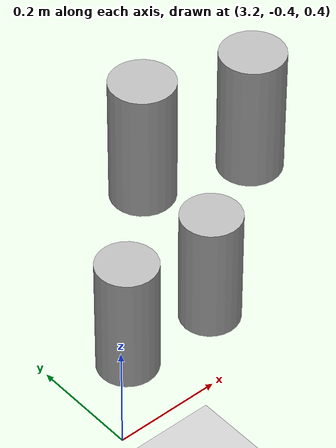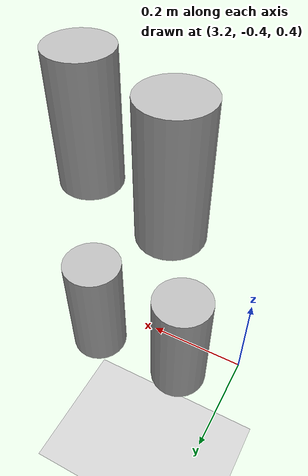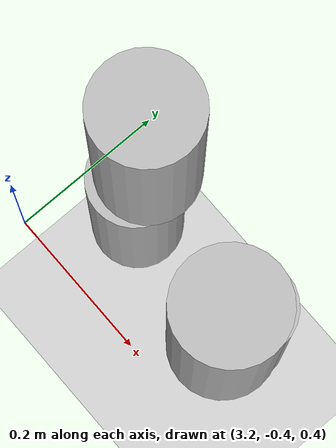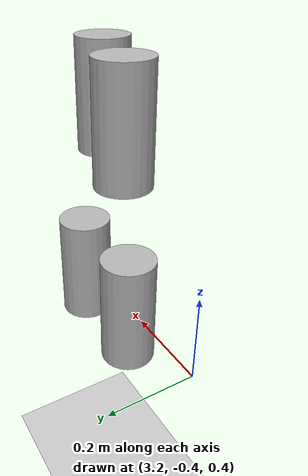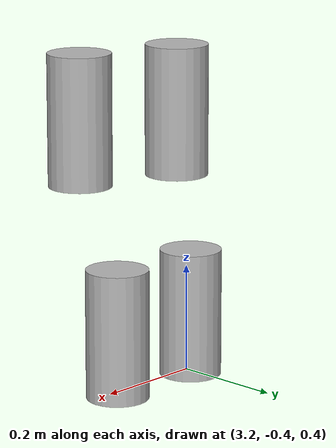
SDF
<sdf version="1.7">
 <world name="default">
  <model name="ground_plane">
   <static>1</static>
   <link name="link">
    <collision name="collision">
     <geometry><plane><normal>0 0 1</normal><size>100 100</size></plane></geometry>
     <surface>
      <contact><collide_bitmask>65535</collide_bitmask></contact>
      <friction><ode><mu>100</mu><mu2>50</mu2></ode></friction>
     </surface>
    </collision>
    <visual name="visual">
     <cast_shadows>0</cast_shadows>
     <geometry><plane><normal>0 0 1</normal><size>100 100</size></plane></geometry>
     <material>
      <script><uri>file://media/materials/scripts/gazebo.material</uri><name>Gazebo/Grey</name></script>
     </material>
    </visual>
   </link>
  </model>
  <model name="beer">
   <link name="link">
    <pose>0 0 0.115 0 -0 0</pose>
    <inertial>
     <mass>0.39</mass>
     <inertia><ixx>0.00058</ixx><ixy>0</ixy><ixz>0</ixz><iyy>0.00058</iyy><iyz>0</iyz><izz>0.00019</izz></inertia>
    </inertial>
    <collision name="collision">
     <geometry><cylinder><radius>0.055</radius><length>0.23</length></cylinder></geometry>
    </collision>
    <visual name="visual">
     <geometry><cylinder><radius>0.055</radius><length>0.23</length></cylinder></geometry>
     <material>
      <script>
       <uri>model://beer/materials/scripts</uri>
       <uri>model://beer/materials/textures</uri>
       <name>Beer/Diffuse</name>
      </script>
     </material>
    </visual>
   </link>
   <pose>3.29698 -0.300004 0.440002 1e-06 -2.7e-05 0.00051</pose>
  </model>
  <model name="beer_0">
   <link name="link">
    <pose>0 0 0.115 0 -0 0</pose>
    <inertial>
     <mass>0.39</mass>
     <inertia><ixx>0.00058</ixx><ixy>0</ixy><ixz>0</ixz><iyy>0.00058</iyy><iyz>0</iyz><izz>0.00019</izz></inertia>
    </inertial>
    <collision name="collision">
     <geometry><cylinder><radius>0.055</radius><length>0.23</length></cylinder></geometry>
    </collision>
    <visual name="visual">
     <geometry><cylinder><radius>0.055</radius><length>0.23</length></cylinder></geometry>
     <material>
      <script>
       <uri>model://beer/materials/scripts</uri>
       <uri>model://beer/materials/textures</uri>
       <name>Beer/Diffuse</name>
      </script>
     </material>
    </visual>
   </link>
   <pose>3.48128 -0.300001 0.440001 0 2.7e-05 0.001451</pose>
  </model>
  <model name="beer_1_clone_0">
   <link name="link">
    <pose>0 0 0.115 0 -0 0</pose>
    <inertial>
     <mass>0.39</mass>
     <inertia><ixx>0.00058</ixx><ixy>0</ixy><ixz>0</ixz><iyy>0.00058</iyy><iyz>0</iyz><izz>0.00019</izz></inertia>
    </inertial>
    <collision name="collision">
     <geometry><cylinder><radius>0.055</radius><length>0.23</length></cylinder></geometry>
    </collision>
    <visual name="visual">
     <geometry><cylinder><radius>0.055</radius><length>0.23</length></cylinder></geometry>
     <material>
      <script>
       <uri>model://beer/materials/scripts</uri>
       <uri>model://beer/materials/textures</uri>
       <name>Beer/Diffuse</name>
      </script>
     </material>
    </visual>
   </link>
   <pose>3.32726 -0.305972 0.810002 1e-06 -2.7e-05 0.000472</pose>
  </model>
  <model name="beer_1_clone_1">
   <link name="link">
    <pose>0 0 0.115 0 -0 0</pose>
    <inertial>
     <mass>0.39</mass>
     <inertia><ixx>0.00058</ixx><ixy>0</ixy><ixz>0</ixz><iyy>0.00058</iyy><iyz>0</iyz><izz>0.00019</izz></inertia>
    </inertial>
    <collision name="collision">
     <geometry><cylinder><radius>0.055</radius><length>0.23</length></cylinder></geometry>
    </collision>
    <visual name="visual">
     <geometry><cylinder><radius>0.055</radius><length>0.23</length></cylinder></geometry>
     <material>
      <script>
       <uri>model://beer/materials/scripts</uri>
       <uri>model://beer/materials/textures</uri>
       <name>Beer/Diffuse</name>
      </script>
     </material>
    </visual>
   </link>
   <pose>3.50519 -0.363455 0.809992 2.2e-05 -1.1e-05 -1.57051</pose>
  </model>
 </world>
</sdf>
